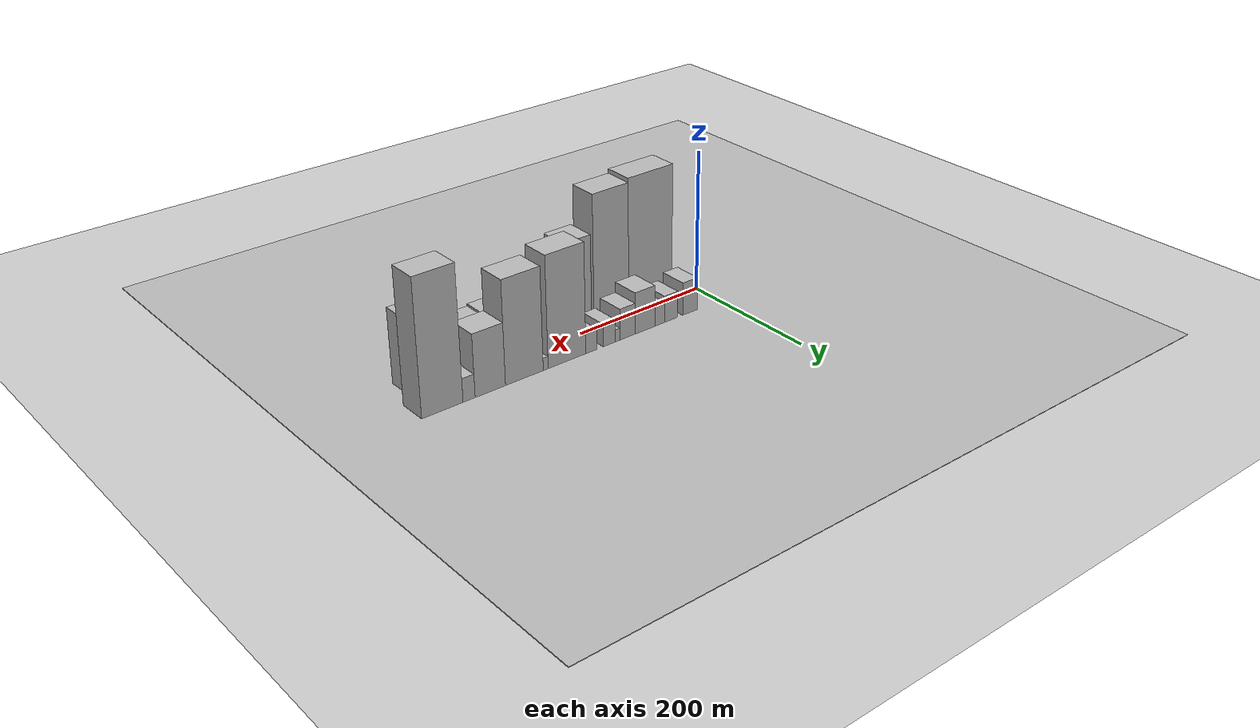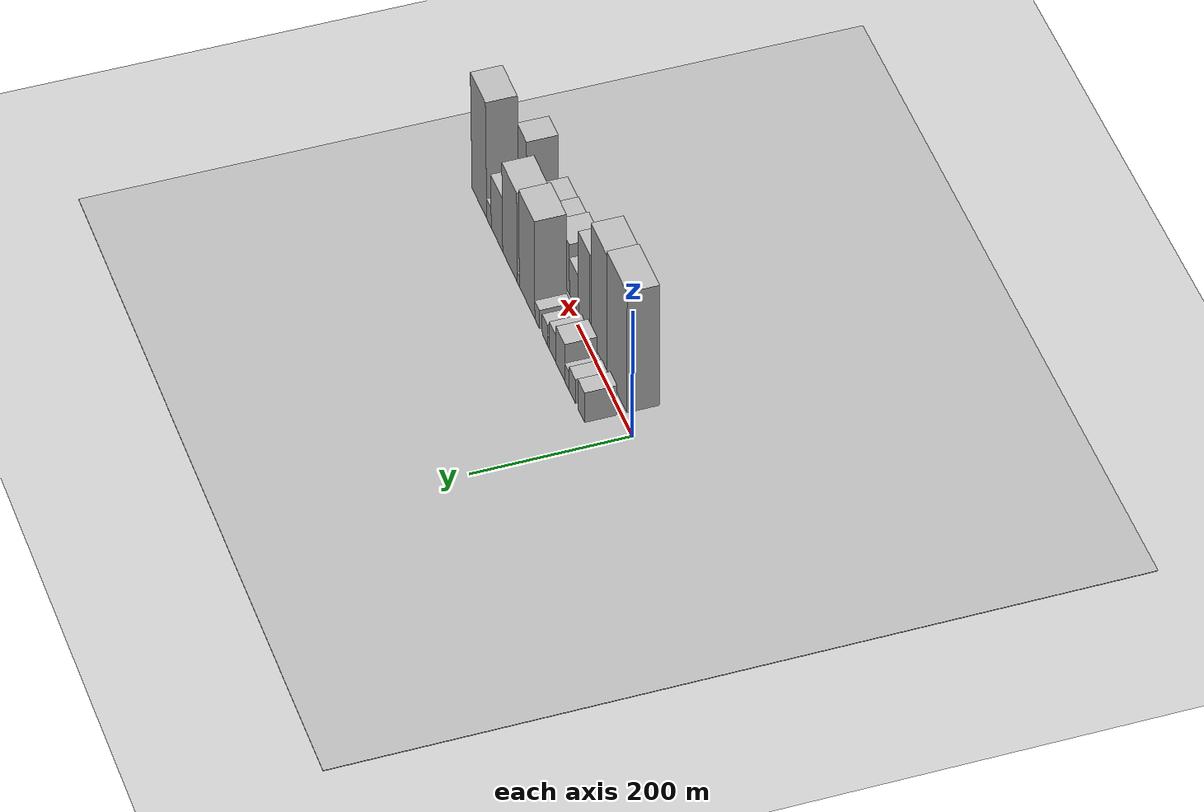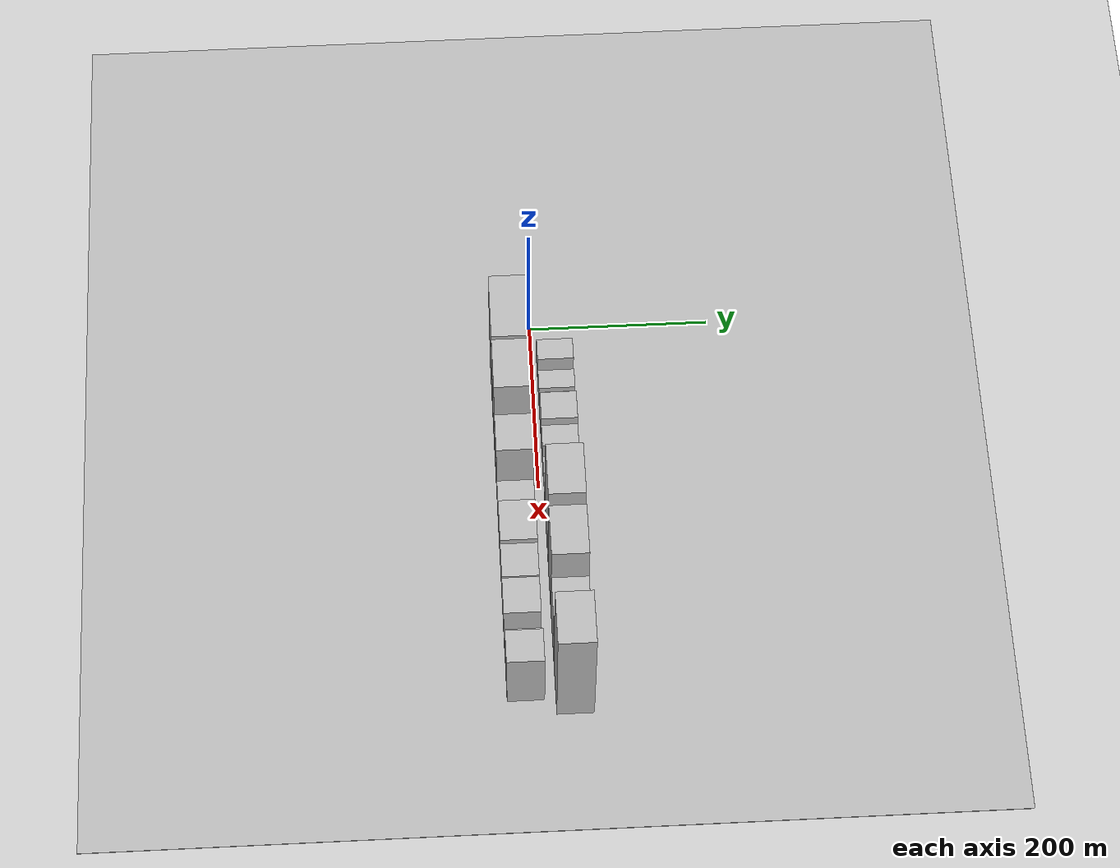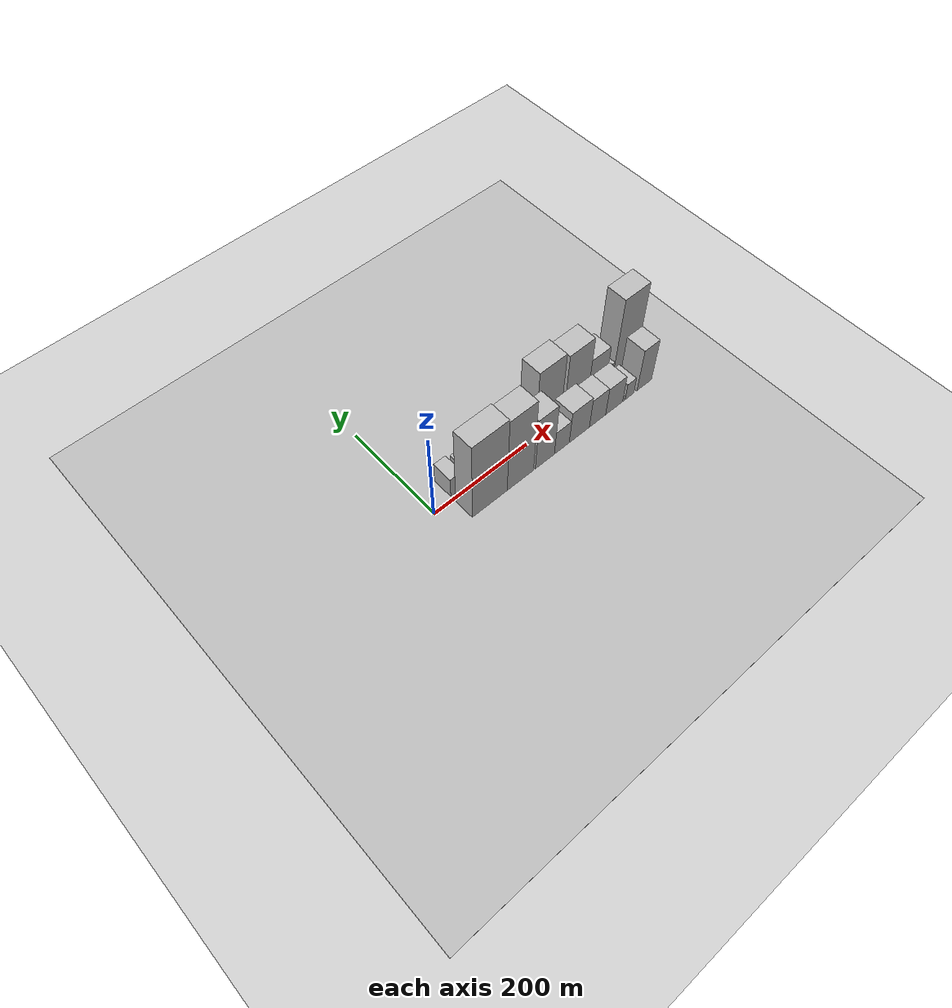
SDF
<?xml version="1.0" encoding="utf-8"?>

<sdf version="1.6">

   <world name="default">

      <gui fullscreen="0">

         <camera name="user_camera">

            <pose>-15 0 4.57585 0 0 0</pose>

            <view_controller>orbit</view_controller>

         </camera>

      </gui>

      <scene>

         <sky>

           <clouds>

             <speed>12</speed>

           </clouds>

         </sky>

         <ambient>0.4 0.4 0.4 1</ambient>

         <background>0.7 0.7 0.7 1</background>

         <shadows>1</shadows>

      </scene>

      <gravity>0 0 -9.8066</gravity>

      <magnetic_field>6e-06 2.3e-05 -4.2e-05</magnetic_field>

      <physics default="0" name="default_physics" type="ode">

         <ode>

            <solver>

               <type>quick</type>

               <iters>10</iters>

               <sor>1.0</sor>

               <use_dynamic_moi_rescaling>0</use_dynamic_moi_rescaling>

            </solver>

            <constraints>

               <cfm>0</cfm>

               <erp>0.2</erp>

               <contact_max_correcting_vel>100</contact_max_correcting_vel>

               <contact_surface_layer>0.001</contact_surface_layer>

            </constraints>

         </ode>

         <max_step_size>0.004</max_step_size>

         <real_time_factor>1</real_time_factor>

         <real_time_update_rate>250</real_time_update_rate>

      </physics>

      <light name="sun" type="directional">

         <cast_shadows>1</cast_shadows>

         <pose>0 0 10 0 0 0</pose>

         <diffuse>0.8 0.8 0.8 1</diffuse>

         <specular>0.2 0.2 0.2 1</specular>

         <attenuation>

            <range>1000</range>

            <constant>0.9</constant>

            <linear>0.01</linear>

            <quadratic>0.001</quadratic>

         </attenuation>

         <direction>-0.5 0.1 -0.9</direction>

      </light>

      <include>

         <name>ground_plane_1</name>

         <uri>model://HANNAS_ground_plane</uri>

         <pose>0 0 0  0 0 0</pose>

      </include>

      <include>

         <name>ground_plane_2</name>

         <uri>model://HANNAS_ground_plane</uri>

         <pose>100 0 0  0 0 0</pose>

      </include>

      <model name="building_1">

         <static>1</static>

         <pose frame="">52.5794 26.0000 0 0.000000 0.000000 1.570796</pose>

         <link name="link">

            <pose frame="">0 0 24.00 0 0 0</pose>

            <collision name="collision">

               <geometry>

                  <box>

                     <size>40.0000 25.1588 48.0000</size>

                  </box>

               </geometry>

               <max_contacts>10</max_contacts>

               <surface>

                  <contact>

                     <ode/>

                  </contact>

                  <bounce/>

                  <friction>

                     <torsional>

                        <ode/>

                     </torsional>

                     <ode/>

                  </friction>

               </surface>

            </collision>

            <visual name="visual">

               <cast_shadows>0</cast_shadows>

               <geometry>

                  <box>

                     <size>40.0000 25.1588 48.0000</size>

                  </box>

               </geometry>

               <material>

                  <script>

                     <uri>model://HANNAS_wall/materials/scripts</uri>

                     <uri>model://HANNAS_wall/materials/textures</uri>

                     <name>vrc/HANNAS_wall</name>

                  </script>

               </material>

            </visual>

            <self_collide>0</self_collide>

            <enable_wind>0</enable_wind>

            <kinematic>0</kinematic>

         </link>

      </model>

      <model name="building_2">

         <static>1</static>

         <pose frame="">85.4771 26.0000 0 0.000000 0.000000 1.570796</pose>

         <link name="link">

            <pose frame="">0 0 19.50 0 0 0</pose>

            <collision name="collision">

               <geometry>

                  <box>

                     <size>40.0000 22.6365 39.0000</size>

                  </box>

               </geometry>

               <max_contacts>10</max_contacts>

               <surface>

                  <contact>

                     <ode/>

                  </contact>

                  <bounce/>

                  <friction>

                     <torsional>

                        <ode/>

                     </torsional>

                     <ode/>

                  </friction>

               </surface>

            </collision>

            <visual name="visual">

               <cast_shadows>0</cast_shadows>

               <geometry>

                  <box>

                     <size>40.0000 22.6365 39.0000</size>

                  </box>

               </geometry>

               <material>

                  <script>

                     <uri>model://HANNAS_wall/materials/scripts</uri>

                     <uri>model://HANNAS_wall/materials/textures</uri>

                     <name>vrc/HANNAS_wall</name>

                  </script>

               </material>

            </visual>

            <self_collide>0</self_collide>

            <enable_wind>0</enable_wind>

            <kinematic>0</kinematic>

         </link>

      </model>

      <model name="building_3">

         <static>1</static>

         <pose frame="">105.0093 26.0000 0 0.000000 0.000000 1.570796</pose>

         <link name="link">

            <pose frame="">0 0 15.00 0 0 0</pose>

            <collision name="collision">

               <geometry>

                  <box>

                     <size>40.0000 16.4280 30.0000</size>

                  </box>

               </geometry>

               <max_contacts>10</max_contacts>

               <surface>

                  <contact>

                     <ode/>

                  </contact>

                  <bounce/>

                  <friction>

                     <torsional>

                        <ode/>

                     </torsional>

                     <ode/>

                  </friction>

               </surface>

            </collision>

            <visual name="visual">

               <cast_shadows>0</cast_shadows>

               <geometry>

                  <box>

                     <size>40.0000 16.4280 30.0000</size>

                  </box>

               </geometry>

               <material>

                  <script>

                     <uri>model://HANNAS_wall/materials/scripts</uri>

                     <uri>model://HANNAS_wall/materials/textures</uri>

                     <name>vrc/HANNAS_wall</name>

                  </script>

               </material>

            </visual>

            <self_collide>0</self_collide>

            <enable_wind>0</enable_wind>

            <kinematic>0</kinematic>

         </link>

      </model>

      <model name="building_4">

         <static>1</static>

         <pose frame="">129.6488 26.0000 0 0.000000 0.000000 1.570796</pose>

         <link name="link">

            <pose frame="">0 0 30.00 0 0 0</pose>

            <collision name="collision">

               <geometry>

                  <box>

                     <size>40.0000 32.8509 60.0000</size>

                  </box>

               </geometry>

               <max_contacts>10</max_contacts>

               <surface>

                  <contact>

                     <ode/>

                  </contact>

                  <bounce/>

                  <friction>

                     <torsional>

                        <ode/>

                     </torsional>

                     <ode/>

                  </friction>

               </surface>

            </collision>

            <visual name="visual">

               <cast_shadows>0</cast_shadows>

               <geometry>

                  <box>

                     <size>40.0000 32.8509 60.0000</size>

                  </box>

               </geometry>

               <material>

                  <script>

                     <uri>model://HANNAS_wall/materials/scripts</uri>

                     <uri>model://HANNAS_wall/materials/textures</uri>

                     <name>vrc/HANNAS_wall</name>

                  </script>

               </material>

            </visual>

            <self_collide>0</self_collide>

            <enable_wind>0</enable_wind>

            <kinematic>0</kinematic>

         </link>

      </model>

      <model name="building_5">

         <static>1</static>

         <pose frame="">158.6816 26.0000 0 0.000000 0.000000 1.570796</pose>

         <link name="link">

            <pose frame="">0 0 22.50 0 0 0</pose>

            <collision name="collision">

               <geometry>

                  <box>

                     <size>40.0000 25.2147 45.0000</size>

                  </box>

               </geometry>

               <max_contacts>10</max_contacts>

               <surface>

                  <contact>

                     <ode/>

                  </contact>

                  <bounce/>

                  <friction>

                     <torsional>

                        <ode/>

                     </torsional>

                     <ode/>

                  </friction>

               </surface>

            </collision>

            <visual name="visual">

               <cast_shadows>0</cast_shadows>

               <geometry>

                  <box>

                     <size>40.0000 25.2147 45.0000</size>

                  </box>

               </geometry>

               <material>

                  <script>

                     <uri>model://HANNAS_wall/materials/scripts</uri>

                     <uri>model://HANNAS_wall/materials/textures</uri>

                     <name>vrc/HANNAS_wall</name>

                  </script>

               </material>

            </visual>

            <self_collide>0</self_collide>

            <enable_wind>0</enable_wind>

            <kinematic>0</kinematic>

         </link>

      </model>

      <model name="building_6">

         <static>1</static>

         <pose frame="">175.1141 26.0000 0 0.000000 0.000000 1.570796</pose>

         <link name="link">

            <pose frame="">0 0 9.00 0 0 0</pose>

            <collision name="collision">

               <geometry>

                  <box>

                     <size>40.0000 7.6503 18.0000</size>

                  </box>

               </geometry>

               <max_contacts>10</max_contacts>

               <surface>

                  <contact>

                     <ode/>

                  </contact>

                  <bounce/>

                  <friction>

                     <torsional>

                        <ode/>

                     </torsional>

                     <ode/>

                  </friction>

               </surface>

            </collision>

            <visual name="visual">

               <cast_shadows>0</cast_shadows>

               <geometry>

                  <box>

                     <size>40.0000 7.6503 18.0000</size>

                  </box>

               </geometry>

               <material>

                  <script>

                     <uri>model://HANNAS_wall/materials/scripts</uri>

                     <uri>model://HANNAS_wall/materials/textures</uri>

                     <name>vrc/HANNAS_wall</name>

                  </script>

               </material>

            </visual>

            <self_collide>0</self_collide>

            <enable_wind>0</enable_wind>

            <kinematic>0</kinematic>

         </link>

      </model>

      <model name="building_7">

         <static>1</static>

         <pose frame="">188.7531 26.0000 0 0.000000 0.000000 1.570796</pose>

         <link name="link">

            <pose frame="">0 0 16.50 0 0 0</pose>

            <collision name="collision">

               <geometry>

                  <box>

                     <size>40.0000 19.6277 33.0000</size>

                  </box>

               </geometry>

               <max_contacts>10</max_contacts>

               <surface>

                  <contact>

                     <ode/>

                  </contact>

                  <bounce/>

                  <friction>

                     <torsional>

                        <ode/>

                     </torsional>

                     <ode/>

                  </friction>

               </surface>

            </collision>

            <visual name="visual">

               <cast_shadows>0</cast_shadows>

               <geometry>

                  <box>

                     <size>40.0000 19.6277 33.0000</size>

                  </box>

               </geometry>

               <material>

                  <script>

                     <uri>model://HANNAS_wall/materials/scripts</uri>

                     <uri>model://HANNAS_wall/materials/textures</uri>

                     <name>vrc/HANNAS_wall</name>

                  </script>

               </material>

            </visual>

            <self_collide>0</self_collide>

            <enable_wind>0</enable_wind>

            <kinematic>0</kinematic>

         </link>

      </model>

      <model name="building_8">

         <static>1</static>

         <pose frame="">217.5417 26.0000 0 0.000000 0.000000 1.570796</pose>

         <link name="link">

            <pose frame="">0 0 15.00 0 0 0</pose>

            <collision name="collision">

               <geometry>

                  <box>

                     <size>40.0000 17.9495 30.0000</size>

                  </box>

               </geometry>

               <max_contacts>10</max_contacts>

               <surface>

                  <contact>

                     <ode/>

                  </contact>

                  <bounce/>

                  <friction>

                     <torsional>

                        <ode/>

                     </torsional>

                     <ode/>

                  </friction>

               </surface>

            </collision>

            <visual name="visual">

               <cast_shadows>0</cast_shadows>

               <geometry>

                  <box>

                     <size>40.0000 17.9495 30.0000</size>

                  </box>

               </geometry>

               <material>

                  <script>

                     <uri>model://HANNAS_wall/materials/scripts</uri>

                     <uri>model://HANNAS_wall/materials/textures</uri>

                     <name>vrc/HANNAS_wall</name>

                  </script>

               </material>

            </visual>

            <self_collide>0</self_collide>

            <enable_wind>0</enable_wind>

            <kinematic>0</kinematic>

         </link>

      </model>

      <model name="building_9">

         <static>1</static>

         <pose frame="">255.9908 26.0000 0 0.000000 0.000000 1.570796</pose>

         <link name="link">

            <pose frame="">0 0 78.00 0 0 0</pose>

            <collision name="collision">

               <geometry>

                  <box>

                     <size>40.0000 58.9488 156.0000</size>

                  </box>

               </geometry>

               <max_contacts>10</max_contacts>

               <surface>

                  <contact>

                     <ode/>

                  </contact>

                  <bounce/>

                  <friction>

                     <torsional>

                        <ode/>

                     </torsional>

                     <ode/>

                  </friction>

               </surface>

            </collision>

            <visual name="visual">

               <cast_shadows>0</cast_shadows>

               <geometry>

                  <box>

                     <size>40.0000 58.9488 156.0000</size>

                  </box>

               </geometry>

               <material>

                  <script>

                     <uri>model://HANNAS_wall/materials/scripts</uri>

                     <uri>model://HANNAS_wall/materials/textures</uri>

                     <name>vrc/HANNAS_wall</name>

                  </script>

               </material>

            </visual>

            <self_collide>0</self_collide>

            <enable_wind>0</enable_wind>

            <kinematic>0</kinematic>

         </link>

      </model>

      <model name="building_10">

         <static>1</static>

         <pose frame="">289.2216 26.0000 0 0.000000 0.000000 1.570796</pose>

         <link name="link">

            <pose frame="">0 0 9.00 0 0 0</pose>

            <collision name="collision">

               <geometry>

                  <box>

                     <size>40.0000 7.5127 18.0000</size>

                  </box>

               </geometry>

               <max_contacts>10</max_contacts>

               <surface>

                  <contact>

                     <ode/>

                  </contact>

                  <bounce/>

                  <friction>

                     <torsional>

                        <ode/>

                     </torsional>

                     <ode/>

                  </friction>

               </surface>

            </collision>

            <visual name="visual">

               <cast_shadows>0</cast_shadows>

               <geometry>

                  <box>

                     <size>40.0000 7.5127 18.0000</size>

                  </box>

               </geometry>

               <material>

                  <script>

                     <uri>model://HANNAS_wall/materials/scripts</uri>

                     <uri>model://HANNAS_wall/materials/textures</uri>

                     <name>vrc/HANNAS_wall</name>

                  </script>

               </material>

            </visual>

            <self_collide>0</self_collide>

            <enable_wind>0</enable_wind>

            <kinematic>0</kinematic>

         </link>

      </model>

      <model name="building_11">

         <static>1</static>

         <pose frame="">321.3518 26.0000 0 0.000000 0.000000 1.570796</pose>

         <link name="link">

            <pose frame="">0 0 72.00 0 0 0</pose>

            <collision name="collision">

               <geometry>

                  <box>

                     <size>40.0000 56.7477 144.0000</size>

                  </box>

               </geometry>

               <max_contacts>10</max_contacts>

               <surface>

                  <contact>

                     <ode/>

                  </contact>

                  <bounce/>

                  <friction>

                     <torsional>

                        <ode/>

                     </torsional>

                     <ode/>

                  </friction>

               </surface>

            </collision>

            <visual name="visual">

               <cast_shadows>0</cast_shadows>

               <geometry>

                  <box>

                     <size>40.0000 56.7477 144.0000</size>

                  </box>

               </geometry>

               <material>

                  <script>

                     <uri>model://HANNAS_wall/materials/scripts</uri>

                     <uri>model://HANNAS_wall/materials/textures</uri>

                     <name>vrc/HANNAS_wall</name>

                  </script>

               </material>

            </visual>

            <self_collide>0</self_collide>

            <enable_wind>0</enable_wind>

            <kinematic>0</kinematic>

         </link>

      </model>

      <model name="building_12">

         <static>1</static>

         <pose frame="">371.9009 26.0000 0 0.000000 0.000000 1.570796</pose>

         <link name="link">

            <pose frame="">0 0 43.50 0 0 0</pose>

            <collision name="collision">

               <geometry>

                  <box>

                     <size>40.0000 44.3506 87.0000</size>

                  </box>

               </geometry>

               <max_contacts>10</max_contacts>

               <surface>

                  <contact>

                     <ode/>

                  </contact>

                  <bounce/>

                  <friction>

                     <torsional>

                        <ode/>

                     </torsional>

                     <ode/>

                  </friction>

               </surface>

            </collision>

            <visual name="visual">

               <cast_shadows>0</cast_shadows>

               <geometry>

                  <box>

                     <size>40.0000 44.3506 87.0000</size>

                  </box>

               </geometry>

               <material>

                  <script>

                     <uri>model://HANNAS_wall/materials/scripts</uri>

                     <uri>model://HANNAS_wall/materials/textures</uri>

                     <name>vrc/HANNAS_wall</name>

                  </script>

               </material>

            </visual>

            <self_collide>0</self_collide>

            <enable_wind>0</enable_wind>

            <kinematic>0</kinematic>

         </link>

      </model>

      <model name="building_13">

         <static>1</static>

         <pose frame="">402.7312 26.0000 0 0.000000 0.000000 1.570796</pose>

         <link name="link">

            <pose frame="">0 0 16.50 0 0 0</pose>

            <collision name="collision">

               <geometry>

                  <box>

                     <size>40.0000 17.3100 33.0000</size>

                  </box>

               </geometry>

               <max_contacts>10</max_contacts>

               <surface>

                  <contact>

                     <ode/>

                  </contact>

                  <bounce/>

                  <friction>

                     <torsional>

                        <ode/>

                     </torsional>

                     <ode/>

                  </friction>

               </surface>

            </collision>

            <visual name="visual">

               <cast_shadows>0</cast_shadows>

               <geometry>

                  <box>

                     <size>40.0000 17.3100 33.0000</size>

                  </box>

               </geometry>

               <material>

                  <script>

                     <uri>model://HANNAS_wall/materials/scripts</uri>

                     <uri>model://HANNAS_wall/materials/textures</uri>

                     <name>vrc/HANNAS_wall</name>

                  </script>

               </material>

            </visual>

            <self_collide>0</self_collide>

            <enable_wind>0</enable_wind>

            <kinematic>0</kinematic>

         </link>

      </model>

      <model name="building_14">

         <static>1</static>

         <pose frame="">440.3776 26.0000 0 0.000000 0.000000 1.570796</pose>

         <link name="link">

            <pose frame="">0 0 93.00 0 0 0</pose>

            <collision name="collision">

               <geometry>

                  <box>

                     <size>40.0000 57.9828 186.0000</size>

                  </box>

               </geometry>

               <max_contacts>10</max_contacts>

               <surface>

                  <contact>

                     <ode/>

                  </contact>

                  <bounce/>

                  <friction>

                     <torsional>

                        <ode/>

                     </torsional>

                     <ode/>

                  </friction>

               </surface>

            </collision>

            <visual name="visual">

               <cast_shadows>0</cast_shadows>

               <geometry>

                  <box>

                     <size>40.0000 57.9828 186.0000</size>

                  </box>

               </geometry>

               <material>

                  <script>

                     <uri>model://HANNAS_wall/materials/scripts</uri>

                     <uri>model://HANNAS_wall/materials/textures</uri>

                     <name>vrc/HANNAS_wall</name>

                  </script>

               </material>

            </visual>

            <self_collide>0</self_collide>

            <enable_wind>0</enable_wind>

            <kinematic>0</kinematic>

         </link>

      </model>

      <model name="building_15">

         <static>1</static>

         <pose frame="">77.2309 -26.0000 0 0.000000 0.000000 1.570796</pose>

         <link name="link">

            <pose frame="">0 0 96.00 0 0 0</pose>

            <collision name="collision">

               <geometry>

                  <box>

                     <size>40.0000 74.4617 192.0000</size>

                  </box>

               </geometry>

               <max_contacts>10</max_contacts>

               <surface>

                  <contact>

                     <ode/>

                  </contact>

                  <bounce/>

                  <friction>

                     <torsional>

                        <ode/>

                     </torsional>

                     <ode/>

                  </friction>

               </surface>

            </collision>

            <visual name="visual">

               <cast_shadows>0</cast_shadows>

               <geometry>

                  <box>

                     <size>40.0000 74.4617 192.0000</size>

                  </box>

               </geometry>

               <material>

                  <script>

                     <uri>model://HANNAS_wall/materials/scripts</uri>

                     <uri>model://HANNAS_wall/materials/textures</uri>

                     <name>vrc/HANNAS_wall</name>

                  </script>

               </material>

            </visual>

            <self_collide>0</self_collide>

            <enable_wind>0</enable_wind>

            <kinematic>0</kinematic>

         </link>

      </model>

      <model name="building_16">

         <static>1</static>

         <pose frame="">143.4056 -26.0000 0 0.000000 0.000000 1.570796</pose>

         <link name="link">

            <pose frame="">0 0 93.00 0 0 0</pose>

            <collision name="collision">

               <geometry>

                  <box>

                     <size>40.0000 57.8878 186.0000</size>

                  </box>

               </geometry>

               <max_contacts>10</max_contacts>

               <surface>

                  <contact>

                     <ode/>

                  </contact>

                  <bounce/>

                  <friction>

                     <torsional>

                        <ode/>

                     </torsional>

                     <ode/>

                  </friction>

               </surface>

            </collision>

            <visual name="visual">

               <cast_shadows>0</cast_shadows>

               <geometry>

                  <box>

                     <size>40.0000 57.8878 186.0000</size>

                  </box>

               </geometry>

               <material>

                  <script>

                     <uri>model://HANNAS_wall/materials/scripts</uri>

                     <uri>model://HANNAS_wall/materials/textures</uri>

                     <name>vrc/HANNAS_wall</name>

                  </script>

               </material>

            </visual>

            <self_collide>0</self_collide>

            <enable_wind>0</enable_wind>

            <kinematic>0</kinematic>

         </link>

      </model>

      <model name="building_17">

         <static>1</static>

         <pose frame="">197.8688 -26.0000 0 0.000000 0.000000 1.570796</pose>

         <link name="link">

            <pose frame="">0 0 66.00 0 0 0</pose>

            <collision name="collision">

               <geometry>

                  <box>

                     <size>40.0000 43.0386 132.0000</size>

                  </box>

               </geometry>

               <max_contacts>10</max_contacts>

               <surface>

                  <contact>

                     <ode/>

                  </contact>

                  <bounce/>

                  <friction>

                     <torsional>

                        <ode/>

                     </torsional>

                     <ode/>

                  </friction>

               </surface>

            </collision>

            <visual name="visual">

               <cast_shadows>0</cast_shadows>

               <geometry>

                  <box>

                     <size>40.0000 43.0386 132.0000</size>

                  </box>

               </geometry>

               <material>

                  <script>

                     <uri>model://HANNAS_wall/materials/scripts</uri>

                     <uri>model://HANNAS_wall/materials/textures</uri>

                     <name>vrc/HANNAS_wall</name>

                  </script>

               </material>

            </visual>

            <self_collide>0</self_collide>

            <enable_wind>0</enable_wind>

            <kinematic>0</kinematic>

         </link>

      </model>

      <model name="building_18">

         <static>1</static>

         <pose frame="">236.4540 -26.0000 0 0.000000 0.000000 1.570796</pose>

         <link name="link">

            <pose frame="">0 0 30.00 0 0 0</pose>

            <collision name="collision">

               <geometry>

                  <box>

                     <size>40.0000 34.1318 60.0000</size>

                  </box>

               </geometry>

               <max_contacts>10</max_contacts>

               <surface>

                  <contact>

                     <ode/>

                  </contact>

                  <bounce/>

                  <friction>

                     <torsional>

                        <ode/>

                     </torsional>

                     <ode/>

                  </friction>

               </surface>

            </collision>

            <visual name="visual">

               <cast_shadows>0</cast_shadows>

               <geometry>

                  <box>

                     <size>40.0000 34.1318 60.0000</size>

                  </box>

               </geometry>

               <material>

                  <script>

                     <uri>model://HANNAS_wall/materials/scripts</uri>

                     <uri>model://HANNAS_wall/materials/textures</uri>

                     <name>vrc/HANNAS_wall</name>

                  </script>

               </material>

            </visual>

            <self_collide>0</self_collide>

            <enable_wind>0</enable_wind>

            <kinematic>0</kinematic>

         </link>

      </model>

      <model name="building_19">

         <static>1</static>

         <pose frame="">277.0649 -26.0000 0 0.000000 0.000000 1.570796</pose>

         <link name="link">

            <pose frame="">0 0 40.50 0 0 0</pose>

            <collision name="collision">

               <geometry>

                  <box>

                     <size>40.0000 47.0900 81.0000</size>

                  </box>

               </geometry>

               <max_contacts>10</max_contacts>

               <surface>

                  <contact>

                     <ode/>

                  </contact>

                  <bounce/>

                  <friction>

                     <torsional>

                        <ode/>

                     </torsional>

                     <ode/>

                  </friction>

               </surface>

            </collision>

            <visual name="visual">

               <cast_shadows>0</cast_shadows>

               <geometry>

                  <box>

                     <size>40.0000 47.0900 81.0000</size>

                  </box>

               </geometry>

               <material>

                  <script>

                     <uri>model://HANNAS_wall/materials/scripts</uri>

                     <uri>model://HANNAS_wall/materials/textures</uri>

                     <name>vrc/HANNAS_wall</name>

                  </script>

               </material>

            </visual>

            <self_collide>0</self_collide>

            <enable_wind>0</enable_wind>

            <kinematic>0</kinematic>

         </link>

      </model>

      <model name="building_20">

         <static>1</static>

         <pose frame="">319.9295 -26.0000 0 0.000000 0.000000 1.570796</pose>

         <link name="link">

            <pose frame="">0 0 36.00 0 0 0</pose>

            <collision name="collision">

               <geometry>

                  <box>

                     <size>40.0000 38.6392 72.0000</size>

                  </box>

               </geometry>

               <max_contacts>10</max_contacts>

               <surface>

                  <contact>

                     <ode/>

                  </contact>

                  <bounce/>

                  <friction>

                     <torsional>

                        <ode/>

                     </torsional>

                     <ode/>

                  </friction>

               </surface>

            </collision>

            <visual name="visual">

               <cast_shadows>0</cast_shadows>

               <geometry>

                  <box>

                     <size>40.0000 38.6392 72.0000</size>

                  </box>

               </geometry>

               <material>

                  <script>

                     <uri>model://HANNAS_wall/materials/scripts</uri>

                     <uri>model://HANNAS_wall/materials/textures</uri>

                     <name>vrc/HANNAS_wall</name>

                  </script>

               </material>

            </visual>

            <self_collide>0</self_collide>

            <enable_wind>0</enable_wind>

            <kinematic>0</kinematic>

         </link>

      </model>

      <model name="building_21">

         <static>1</static>

         <pose frame="">359.7578 -26.0000 0 0.000000 0.000000 1.570796</pose>

         <link name="link">

            <pose frame="">0 0 34.50 0 0 0</pose>

            <collision name="collision">

               <geometry>

                  <box>

                     <size>40.0000 41.0174 69.0000</size>

                  </box>

               </geometry>

               <max_contacts>10</max_contacts>

               <surface>

                  <contact>

                     <ode/>

                  </contact>

                  <bounce/>

                  <friction>

                     <torsional>

                        <ode/>

                     </torsional>

                     <ode/>

                  </friction>

               </surface>

            </collision>

            <visual name="visual">

               <cast_shadows>0</cast_shadows>

               <geometry>

                  <box>

                     <size>40.0000 41.0174 69.0000</size>

                  </box>

               </geometry>

               <material>

                  <script>

                     <uri>model://HANNAS_wall/materials/scripts</uri>

                     <uri>model://HANNAS_wall/materials/textures</uri>

                     <name>vrc/HANNAS_wall</name>

                  </script>

               </material>

            </visual>

            <self_collide>0</self_collide>

            <enable_wind>0</enable_wind>

            <kinematic>0</kinematic>

         </link>

      </model>

      <model name="building_22">

         <static>1</static>

         <pose frame="">383.4871 -26.0000 0 0.000000 0.000000 1.570796</pose>

         <link name="link">

            <pose frame="">0 0 7.50 0 0 0</pose>

            <collision name="collision">

               <geometry>

                  <box>

                     <size>40.0000 6.4411 15.0000</size>

                  </box>

               </geometry>

               <max_contacts>10</max_contacts>

               <surface>

                  <contact>

                     <ode/>

                  </contact>

                  <bounce/>

                  <friction>

                     <torsional>

                        <ode/>

                     </torsional>

                     <ode/>

                  </friction>

               </surface>

            </collision>

            <visual name="visual">

               <cast_shadows>0</cast_shadows>

               <geometry>

                  <box>

                     <size>40.0000 6.4411 15.0000</size>

                  </box>

               </geometry>

               <material>

                  <script>

                     <uri>model://HANNAS_wall/materials/scripts</uri>

                     <uri>model://HANNAS_wall/materials/textures</uri>

                     <name>vrc/HANNAS_wall</name>

                  </script>

               </material>

            </visual>

            <self_collide>0</self_collide>

            <enable_wind>0</enable_wind>

            <kinematic>0</kinematic>

         </link>

      </model>

      <model name="building_23">

         <static>1</static>

         <pose frame="">397.2100 -26.0000 0 0.000000 0.000000 1.570796</pose>

         <link name="link">

            <pose frame="">0 0 21.00 0 0 0</pose>

            <collision name="collision">

               <geometry>

                  <box>

                     <size>40.0000 21.0047 42.0000</size>

                  </box>

               </geometry>

               <max_contacts>10</max_contacts>

               <surface>

                  <contact>

                     <ode/>

                  </contact>

                  <bounce/>

                  <friction>

                     <torsional>

                        <ode/>

                     </torsional>

                     <ode/>

                  </friction>

               </surface>

            </collision>

            <visual name="visual">

               <cast_shadows>0</cast_shadows>

               <geometry>

                  <box>

                     <size>40.0000 21.0047 42.0000</size>

                  </box>

               </geometry>

               <material>

                  <script>

                     <uri>model://HANNAS_wall/materials/scripts</uri>

                     <uri>model://HANNAS_wall/materials/textures</uri>

                     <name>vrc/HANNAS_wall</name>

                  </script>

               </material>

            </visual>

            <self_collide>0</self_collide>

            <enable_wind>0</enable_wind>

            <kinematic>0</kinematic>

         </link>

      </model>

      <model name="building_24">

         <static>1</static>

         <pose frame="">433.9176 -26.0000 0 0.000000 0.000000 1.570796</pose>

         <link name="link">

            <pose frame="">0 0 52.50 0 0 0</pose>

            <collision name="collision">

               <geometry>

                  <box>

                     <size>40.0000 36.4107 105.0000</size>

                  </box>

               </geometry>

               <max_contacts>10</max_contacts>

               <surface>

                  <contact>

                     <ode/>

                  </contact>

                  <bounce/>

                  <friction>

                     <torsional>

                        <ode/>

                     </torsional>

                     <ode/>

                  </friction>

               </surface>

            </collision>

            <visual name="visual">

               <cast_shadows>0</cast_shadows>

               <geometry>

                  <box>

                     <size>40.0000 36.4107 105.0000</size>

                  </box>

               </geometry>

               <material>

                  <script>

                     <uri>model://HANNAS_wall/materials/scripts</uri>

                     <uri>model://HANNAS_wall/materials/textures</uri>

                     <name>vrc/HANNAS_wall</name>

                  </script>

               </material>

            </visual>

            <self_collide>0</self_collide>

            <enable_wind>0</enable_wind>

            <kinematic>0</kinematic>

         </link>

      </model>

   </world>

</sdf>

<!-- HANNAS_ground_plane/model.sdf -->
<sdf version="1.4">
<model name="HANNAS_ground_plane">
  <static>true</static>
    <link name="link">
      <collision name="collision">
        <geometry>
          <plane>
            <normal>0 0 1</normal>
            <size>1000 1000</size>
          </plane>
        </geometry>
        <surface>
          <friction>
            <ode>
              <mu>100</mu>
              <mu2>50</mu2>
            </ode>
          </friction>
        </surface>
      </collision>
      <visual name="visual">
        <cast_shadows>false</cast_shadows>
        <geometry>
          <plane>
            <normal>0 0 1</normal>
            <size>1000 1000</size>
          </plane>
        </geometry>
        <material>
          <script>
            <uri>model://HANNAS_ground_plane/materials/scripts/HANNAS_ground_plane.material</uri>
	    <uri>model://HANNAS_ground_plane/materials/textures</uri>
            <name>HANNASGroundPlane/Image</name>
          </script>
        </material>
      </visual>
    </link>
  </model>
</sdf>
